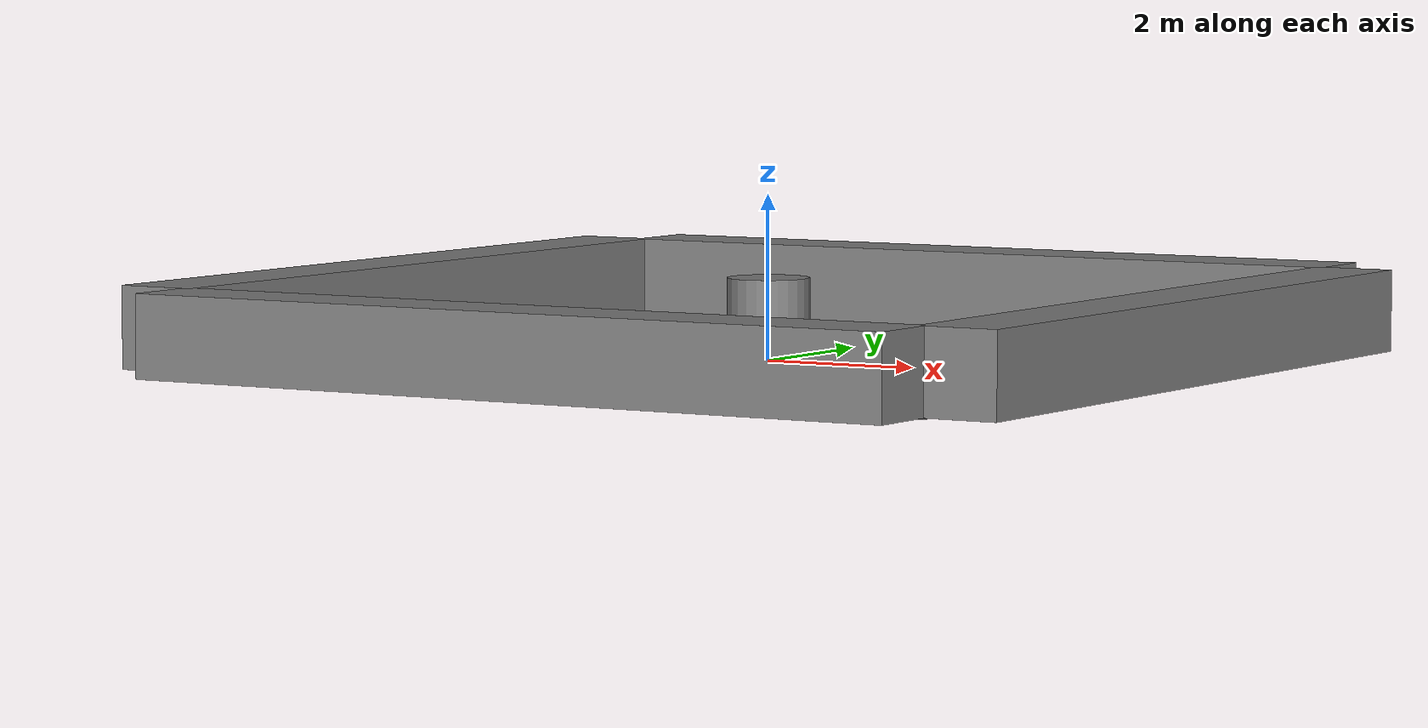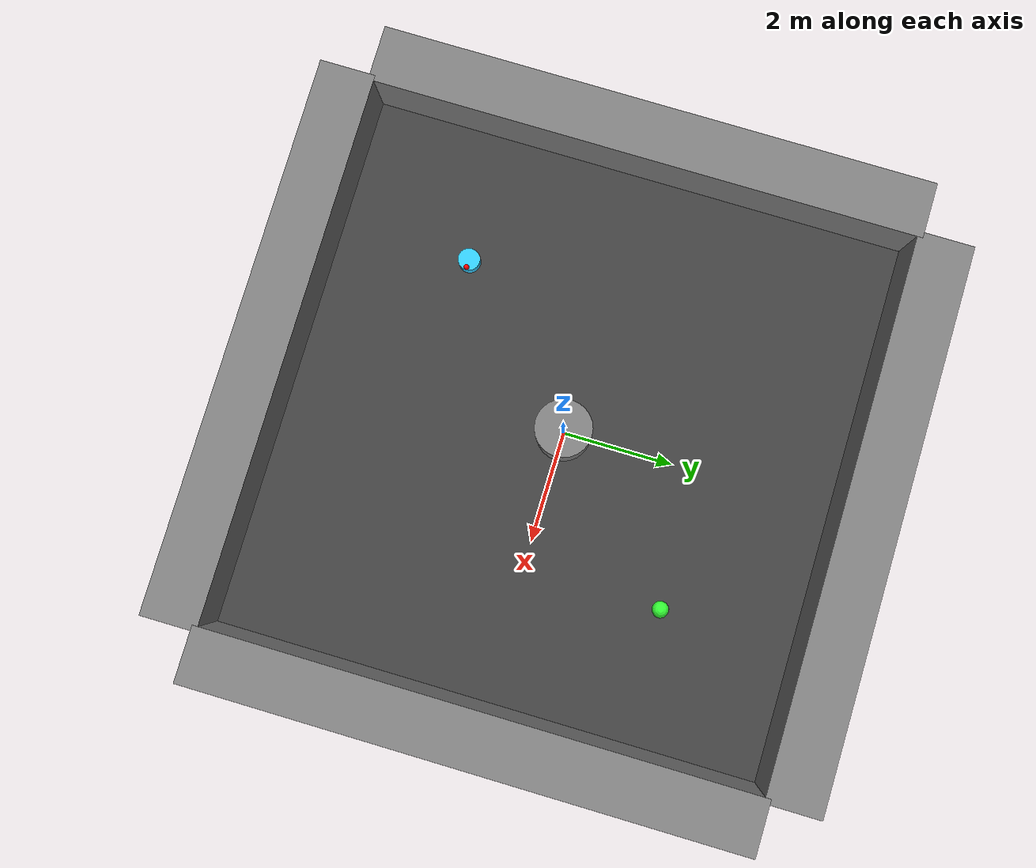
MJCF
<mujoco>
  <option timestep="0.01" gravity="0 0 -9.81"/>

  <asset>
    <texture type="skybox" builtin="gradient" rgb1="0.1 0.1 0.12" rgb2="0.0 0.0 0.0" width="512" height="512"/>
    <texture name="grid" type="2d" builtin="checker" rgb1="0.2 0.2 0.2" rgb2="0.3 0.3 0.3" width="512" height="512"/>
    <material name="floor_mat" texture="grid" texrepeat="10 10"/>
    <material name="blob_mat" rgba="0.2 0.8 1.0 1.0" emission="0.5"/>
    <material name="food_mat" rgba="0.2 1.0 0.2 1.0" emission="0.8"/>
    <material name="wall_mat" rgba="0.5 0.5 0.5 1.0"/>
  </asset>

  <worldbody>
    <light pos="0 0 5" dir="0 0 -1" diffuse="0.8 0.8 0.8"/>

    <geom name="floor" type="plane" size="5 5 0.1" pos="0 0 0" material="floor_mat"/>

    <!-- Boundary Walls (Thicker to prevent high-speed physics tunneling) -->
    <geom name="wall_n" type="box" size="5 0.5 0.5" pos="0 5.4 0.5" material="wall_mat"/>
    <geom name="wall_s" type="box" size="5 0.5 0.5" pos="0 -5.4 0.5" material="wall_mat"/>
    <geom name="wall_e" type="box" size="0.5 5 0.5" pos="5.4 0 0.5" material="wall_mat"/>
    <geom name="wall_w" type="box" size="0.5 5 0.5" pos="-5.4 0 0.5" material="wall_mat"/>

    <!-- Internal Obstacle -->
    <geom name="obstacle" type="cylinder" size="0.5 0.5" pos="0 0 0.5" material="wall_mat"/>

    <!-- Food (No Collision) -->
    <geom name="food" type="sphere" size="0.15" pos="2.5 2.5 0.15" material="food_mat" contype="0" conaffinity="0"/>

    <!-- The Blob (Planar sliding + Z rotation) -->
    <body name="blob" pos="-2.5 -2.5 0.15">
      <joint name="slide_x" type="slide" axis="1 0 0" damping="2.0" armature="0.1"/>
      <joint name="slide_y" type="slide" axis="0 1 0" damping="2.0" armature="0.1"/>
      <joint name="hinge_z" type="hinge" axis="0 0 1" damping="0.5" armature="0.05"/>
      <geom name="blob_geom" type="cylinder" size="0.2 0.1" material="blob_mat" mass="1.0" friction="0.5 0.1 0.1"/>

      <!-- Blob's Eye (Lidar Origin) pointing forward (along local positive X axis) -->
      <site name="eye" pos="0.15 0 0.1" size="0.05" rgba="1 0 0 1"/>
    </body>
  </worldbody>

  <actuator>
    <motor name="motor_x" joint="slide_x" gear="5"/>
    <motor name="motor_y" joint="slide_y" gear="5"/>
    <motor name="motor_z" joint="hinge_z" gear="2"/>
  </actuator>
</mujoco>
